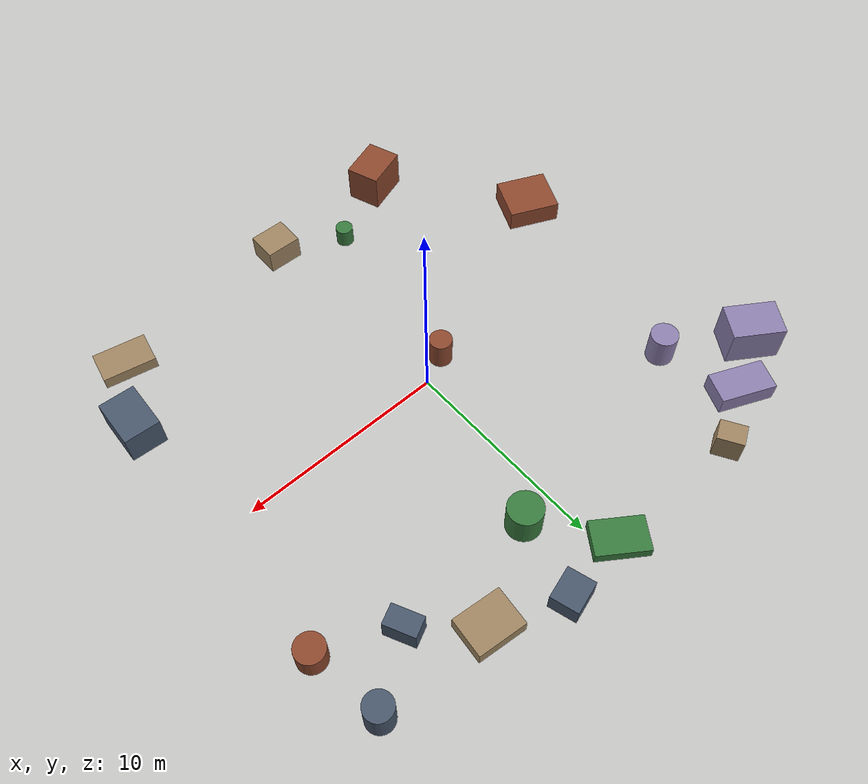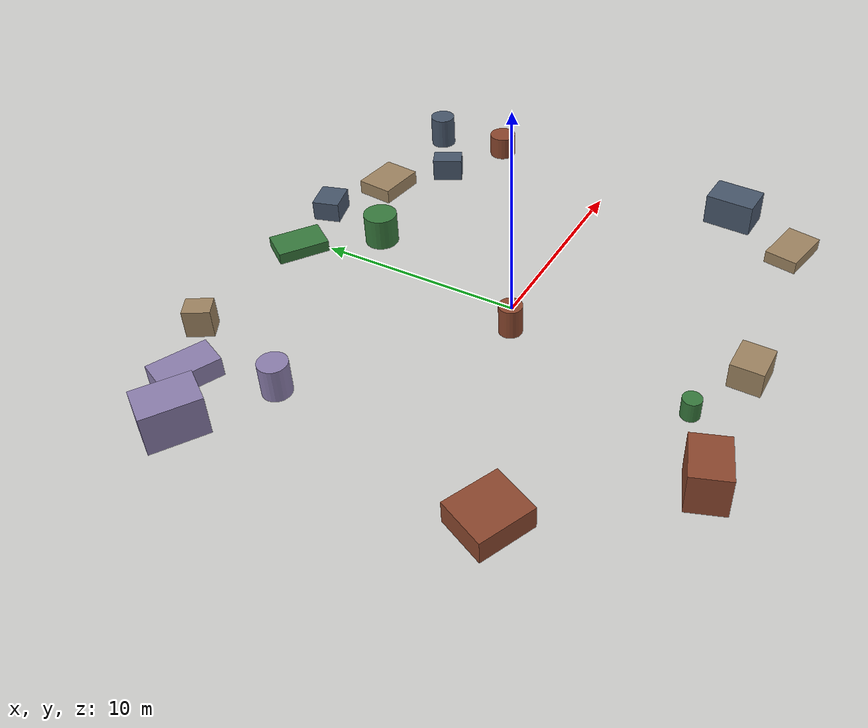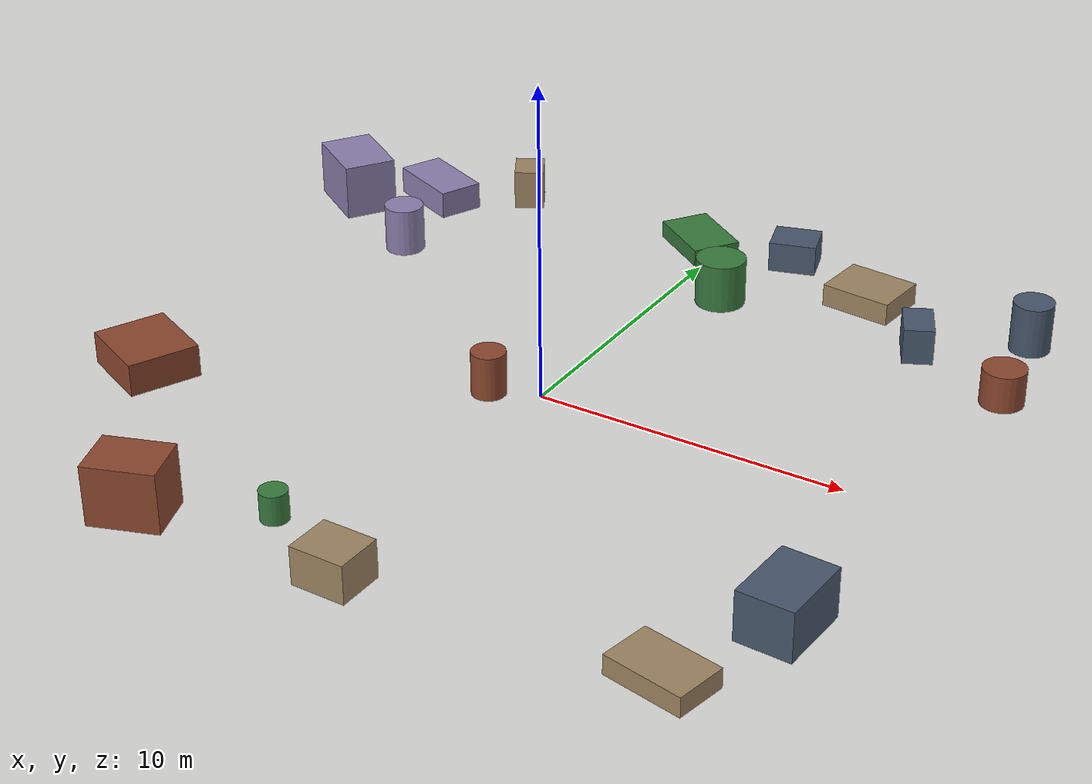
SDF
<sdf version="1.10">
 <world name="robotx_task1_uav_view">
  <gravity>0 0 -9.81</gravity>
  <physics name="physics" type="ode">
   <max_step_size>0.002</max_step_size>
   <real_time_factor>1.0</real_time_factor>
  </physics>
  <scene>
   <ambient>0.20 0.20 0.20 1.0</ambient>
   <background>0.58 0.70 0.88 1.0</background>
   <shadows>true</shadows>
   <grid>false</grid>
  </scene>
  <light name="sun" type="directional">
   <pose>0 0 300 0 0 0</pose>
   <diffuse>0.78 0.78 0.78 1.0</diffuse>
   <specular>0.45 0.45 0.45 1.0</specular>
   <direction>0.20 -0.08 -1.0</direction>
   <attenuation>
    <range>2500</range>
    <constant>0.85</constant>
    <linear>0.001</linear>
    <quadratic>0.00005</quadratic>
   </attenuation>
  </light>
  <plugin filename="gz-sim-physics-system" name="gz::sim::systems::Physics"/>
  <plugin filename="gz-sim-user-commands-system" name="gz::sim::systems::UserCommands"/>
  <plugin filename="gz-sim-scene-broadcaster-system" name="gz::sim::systems::SceneBroadcaster"/>
  <plugin filename="gz-sim-sensors-system" name="gz::sim::systems::Sensors">
   <render_engine>ogre2</render_engine>
  </plugin>
  <model name="scene_clutter_box_000">
   <static>true</static>
   <pose>0.497 -10.939 0.626 0 0 -1.588252</pose>
   <link name="link">
    <visual name="v">
     <geometry><box><size>1.487 1.733 1.212</size></box></geometry>
     <material><ambient>0.45 0.38 0.32 1.0</ambient><diffuse>0.62 0.52 0.38 1.0</diffuse></material>
    </visual>
   </link>
  </model>
  <model name="scene_clutter_box_001">
   <static>true</static>
   <pose>11.513 -6.658 0.797 0 0 3.087095</pose>
   <link name="link">
    <visual name="v">
     <geometry><box><size>1.721 2.385 1.553</size></box></geometry>
     <material><ambient>0.18 0.22 0.28 1.0</ambient><diffuse>0.28 0.34 0.42 1.0</diffuse></material>
    </visual>
   </link>
  </model>
  <model name="scene_clutter_box_002">
   <static>true</static>
   <pose>-6.116 -11.256 0.972 0 0 0.335234</pose>
   <link name="link">
    <visual name="v">
     <geometry><box><size>2.182 1.681 1.903</size></box></geometry>
     <material><ambient>0.35 0.16 0.12 1.0</ambient><diffuse>0.55 0.28 0.18 1.0</diffuse></material>
    </visual>
   </link>
  </model>
  <model name="scene_clutter_cyl_003">
   <static>true</static>
   <pose>1.730 8.166 0.835 0 0 -0.512736</pose>
   <link name="link">
    <visual name="v">
     <geometry><cylinder><radius>0.815</radius><length>1.569</length></cylinder></geometry>
     <material><ambient>0.12 0.30 0.14 1.0</ambient><diffuse>0.22 0.48 0.24 1.0</diffuse></material>
    </visual>
   </link>
  </model>
  <model name="scene_clutter_cyl_004">
   <static>true</static>
   <pose>-9.246 6.061 0.848 0 0 -2.319843</pose>
   <link name="link">
    <visual name="v">
     <geometry><cylinder><radius>0.657</radius><length>1.595</length></cylinder></geometry>
     <material><ambient>0.40 0.35 0.50 1.0</ambient><diffuse>0.55 0.50 0.68 1.0</diffuse></material>
    </visual>
   </link>
  </model>
  <model name="scene_clutter_box_005">
   <static>true</static>
   <pose>9.890 -10.157 0.328 0 0 2.940878</pose>
   <link name="link">
    <visual name="v">
     <geometry><box><size>2.519 1.594 0.615</size></box></geometry>
     <material><ambient>0.45 0.38 0.32 1.0</ambient><diffuse>0.62 0.52 0.38 1.0</diffuse></material>
    </visual>
   </link>
  </model>
  <model name="scene_clutter_box_006">
   <static>true</static>
   <pose>8.534 8.362 0.602 0 0 -2.689334</pose>
   <link name="link">
    <visual name="v">
     <geometry><box><size>0.963 1.498 1.165</size></box></geometry>
     <material><ambient>0.18 0.22 0.28 1.0</ambient><diffuse>0.28 0.34 0.42 1.0</diffuse></material>
    </visual>
   </link>
  </model>
  <model name="scene_clutter_box_007">
   <static>true</static>
   <pose>-11.144 -4.882 0.546 0 0 1.145097</pose>
   <link name="link">
    <visual name="v">
     <geometry><box><size>2.293 2.541 1.052</size></box></geometry>
     <material><ambient>0.35 0.16 0.12 1.0</ambient><diffuse>0.55 0.28 0.18 1.0</diffuse></material>
    </visual>
   </link>
  </model>
  <model name="scene_clutter_box_008">
   <static>true</static>
   <pose>-0.736 11.366 0.299 0 0 0.963504</pose>
   <link name="link">
    <visual name="v">
     <geometry><box><size>1.650 2.467 0.559</size></box></geometry>
     <material><ambient>0.12 0.30 0.14 1.0</ambient><diffuse>0.22 0.48 0.24 1.0</diffuse></material>
    </visual>
   </link>
  </model>
  <model name="scene_clutter_box_009">
   <static>true</static>
   <pose>-12.835 8.332 0.959 0 0 2.560373</pose>
   <link name="link">
    <visual name="v">
     <geometry><box><size>2.517 1.791 1.877</size></box></geometry>
     <material><ambient>0.40 0.35 0.50 1.0</ambient><diffuse>0.55 0.50 0.68 1.0</diffuse></material>
    </visual>
   </link>
  </model>
  <model name="scene_clutter_box_010">
   <static>true</static>
   <pose>-7.644 11.452 0.699 0 0 0.524714</pose>
   <link name="link">
    <visual name="v">
     <geometry><box><size>1.014 1.246 1.358</size></box></geometry>
     <material><ambient>0.45 0.38 0.32 1.0</ambient><diffuse>0.62 0.52 0.38 1.0</diffuse></material>
    </visual>
   </link>
  </model>
  <model name="scene_clutter_box_011">
   <static>true</static>
   <pose>2.616 11.846 0.528 0 0 -2.859212</pose>
   <link name="link">
    <visual name="v">
     <geometry><box><size>1.553 1.340 1.015</size></box></geometry>
     <material><ambient>0.18 0.22 0.28 1.0</ambient><diffuse>0.28 0.34 0.42 1.0</diffuse></material>
    </visual>
   </link>
  </model>
  <model name="scene_clutter_cyl_012">
   <static>true</static>
   <pose>11.964 6.821 0.645 0 0 -0.646258</pose>
   <link name="link">
    <visual name="v">
     <geometry><cylinder><radius>0.686</radius><length>1.190</length></cylinder></geometry>
     <material><ambient>0.35 0.16 0.12 1.0</ambient><diffuse>0.55 0.28 0.18 1.0</diffuse></material>
    </visual>
   </link>
  </model>
  <model name="scene_clutter_cyl_013">
   <static>true</static>
   <pose>-2.659 -9.442 0.517 0 0 -2.856968</pose>
   <link name="link">
    <visual name="v">
     <geometry><cylinder><radius>0.423</radius><length>0.935</length></cylinder></geometry>
     <material><ambient>0.12 0.30 0.14 1.0</ambient><diffuse>0.22 0.48 0.24 1.0</diffuse></material>
    </visual>
   </link>
  </model>
  <model name="scene_clutter_box_014">
   <static>true</static>
   <pose>-10.395 9.882 0.482 0 0 -0.412058</pose>
   <link name="link">
    <visual name="v">
     <geometry><box><size>2.687 1.514 0.923</size></box></geometry>
     <material><ambient>0.40 0.35 0.50 1.0</ambient><diffuse>0.55 0.50 0.68 1.0</diffuse></material>
    </visual>
   </link>
  </model>
  <model name="scene_clutter_box_015">
   <static>true</static>
   <pose>5.935 10.514 0.386 0 0 -1.675408</pose>
   <link name="link">
    <visual name="v">
     <geometry><box><size>1.858 2.343 0.732</size></box></geometry>
     <material><ambient>0.45 0.38 0.32 1.0</ambient><diffuse>0.62 0.52 0.38 1.0</diffuse></material>
    </visual>
   </link>
  </model>
  <model name="scene_clutter_cyl_016">
   <static>true</static>
   <pose>11.462 10.394 0.872 0 0 2.023519</pose>
   <link name="link">
    <visual name="v">
     <geometry><cylinder><radius>0.650</radius><length>1.643</length></cylinder></geometry>
     <material><ambient>0.18 0.22 0.28 1.0</ambient><diffuse>0.28 0.34 0.42 1.0</diffuse></material>
    </visual>
   </link>
  </model>
  <model name="scene_clutter_cyl_017">
   <static>true</static>
   <pose>-1.418 -0.672 0.767 0 0 -2.468983</pose>
   <link name="link">
    <visual name="v">
     <geometry><cylinder><radius>0.546</radius><length>1.434</length></cylinder></geometry>
     <material><ambient>0.35 0.16 0.12 1.0</ambient><diffuse>0.55 0.28 0.18 1.0</diffuse></material>
    </visual>
   </link>
  </model>
  <model name="uav_dataset_camera">
   <static>false</static>
   <pose>0 0 26 0 0 0</pose>
   <plugin filename="librobotx_overhead_motion_plugin.dylib" name="robotx::OverheadMotionPlugin">
    <radius_x_m>13.01588</radius_x_m>
    <radius_y_m>10.01538</radius_y_m>
    <angular_speed_rad_s>0.071466</angular_speed_rad_s>
    <phase_rad>1.403890</phase_rad>
    <z_wobble_m>0.08749</z_wobble_m>
    <z_wobble_hz>0.03134</z_wobble_hz>
    <z_wobble_phase_rad>5.192303</z_wobble_phase_rad>
   </plugin>
   <link name="camera_link">
    <gravity>false</gravity>
    <sensor name="top_down_rgb" type="camera">
     <always_on>true</always_on>
     <update_rate>20</update_rate>
     <pose>0 0 0 0 1.57079632679 0</pose>
     <camera>
      <horizontal_fov>1.05</horizontal_fov>
      <image><width>1920</width><height>1080</height><format>R8G8B8</format></image>
      <clip><near>0.2</near><far>600</far></clip>
     </camera>
     <topic>/robotx/uav/camera/image_raw</topic>
     <visualize>true</visualize>
    </sensor>
   </link>
  </model>
 </world>
</sdf>
